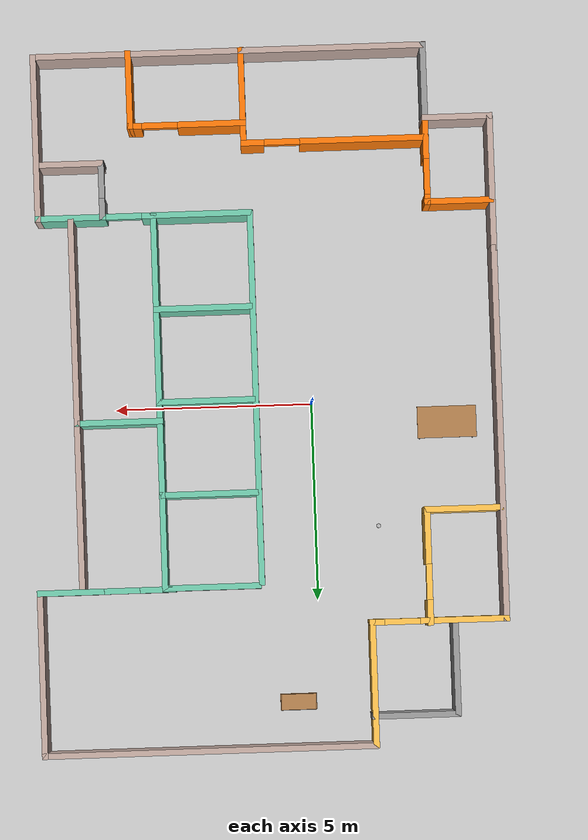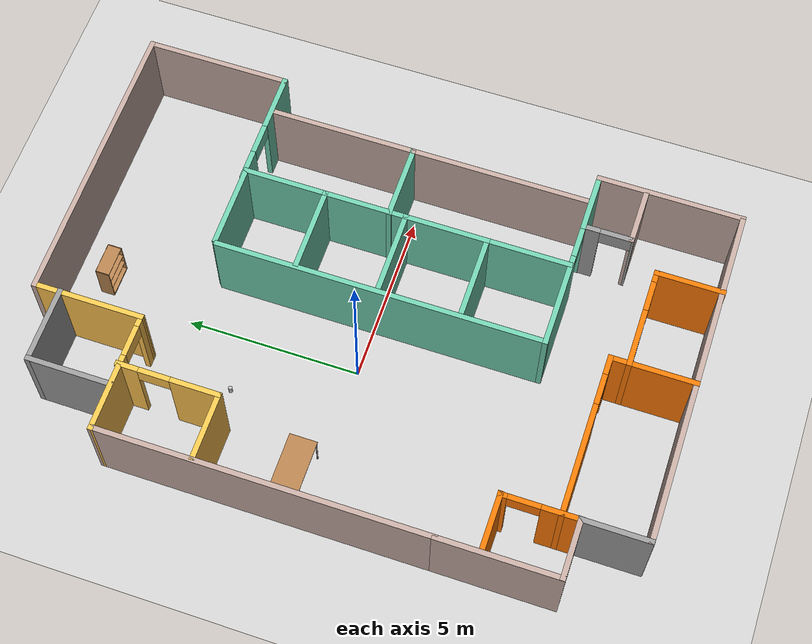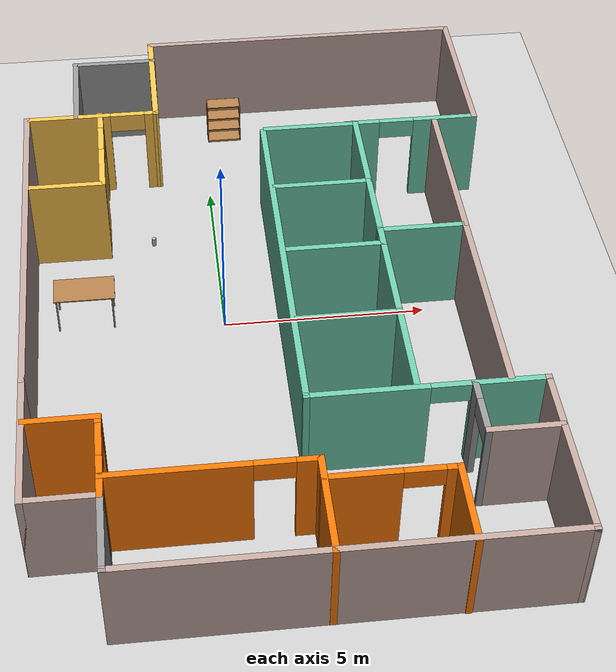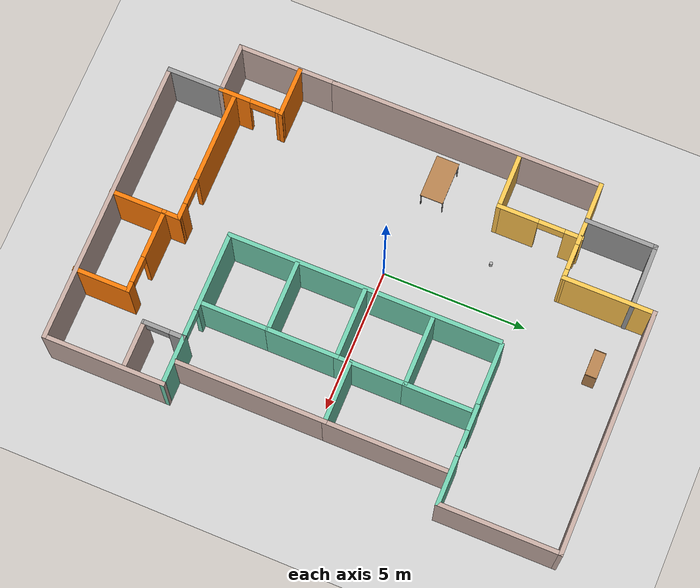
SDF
<sdf version="1.7">
 <world name="default">
  <model name="ground_plane">
   <static>1</static>
   <link name="link">
    <collision name="collision_collision">
     <geometry><plane><normal>0 0 1</normal><size>100 100</size></plane></geometry>
     <surface>
      <contact><collide_bitmask>65535</collide_bitmask></contact>
      <friction><ode><mu>100</mu><mu2>50</mu2></ode></friction>
     </surface>
    </collision>
    <visual name="visual_visual">
     <cast_shadows>0</cast_shadows>
     <geometry><plane><normal>0 0 1</normal><size>100 100</size></plane></geometry>
     <material>
      <script><uri>file://media/materials/scripts/gazebo.material</uri><name>Gazebo/Grey</name></script>
     </material>
    </visual>
   </link>
  </model>
  <model name="mybuilding">
   <pose>1.1462 -0.1123 0 0 -0 0</pose>
   <link name="Wall_123">
    <collision name="collision_Wall_123_Collision">
     <geometry><box><size>5.25 0.15 2.5</size></box></geometry>
     <pose>0 0 1.25 0 -0 0</pose>
    </collision>
    <visual name="visual_Wall_123_Visual">
     <pose>0 0 1.25 0 -0 0</pose>
     <geometry><box><size>5.25 0.15 2.5</size></box></geometry>
     <material>
      <script><uri>file://media/materials/scripts/gazebo.material</uri><name>Gazebo/Grey</name></script>
      <ambient>0.760784 0.662745 0.627451 1</ambient>
     </material>
     <meta><layer>0</layer></meta>
    </visual>
    <pose>4.79444 -2.06703 0 0 -0 1.5708</pose>
   </link>
   <link name="Wall_125">
    <collision name="collision_Wall_125_Collision">
     <geometry><box><size>2.25 0.15 2.5</size></box></geometry>
     <pose>0 0 1.25 0 -0 0</pose>
    </collision>
    <visual name="visual_Wall_125_Visual">
     <pose>0 0 1.25 0 -0 0</pose>
     <geometry><box><size>2.25 0.15 2.5</size></box></geometry>
     <material>
      <script><uri>file://media/materials/scripts/gazebo.material</uri><name>Gazebo/Grey</name></script>
      <ambient>0.435294 0.796078 0.67451 1</ambient>
     </material>
     <meta><layer>0</layer></meta>
    </visual>
    <pose>3.74444 0.482967 0 0 -0 3.14159</pose>
   </link>
   <link name="Wall_127">
    <collision name="collision_Wall_127_Collision">
     <geometry><box><size>4.25 0.15 2.5</size></box></geometry>
     <pose>0 0 1.25 0 -0 0</pose>
    </collision>
    <visual name="visual_Wall_127_Visual">
     <pose>0 0 1.25 0 -0 0</pose>
     <geometry><box><size>4.25 0.15 2.5</size></box></geometry>
     <material>
      <script><uri>file://media/materials/scripts/gazebo.material</uri><name>Gazebo/Grey</name></script>
      <ambient>0.760784 0.662745 0.627451 1</ambient>
     </material>
     <meta><layer>0</layer></meta>
    </visual>
    <pose>4.79444 2.53297 0 0 -0 1.5708</pose>
   </link>
   <link name="Wall_129">
    <collision name="collision_Wall_129_Collision">
     <geometry><box><size>4.25 0.15 2.5</size></box></geometry>
     <pose>0 0 1.25 0 -0 0</pose>
    </collision>
    <visual name="visual_Wall_129_Visual">
     <pose>0 0 1.25 0 -0 0</pose>
     <geometry><box><size>4.25 0.15 2.5</size></box></geometry>
     <material>
      <script><uri>file://media/materials/scripts/gazebo.material</uri><name>Gazebo/Grey</name></script>
      <ambient>0.760784 0.662745 0.627451 1</ambient>
     </material>
     <meta><layer>0</layer></meta>
    </visual>
    <pose>5.86525 6.78658 0 0 -0 1.5708</pose>
   </link>
   <link name="Wall_130">
    <collision name="collision_Wall_130_Collision">
     <geometry><box><size>8.5 0.15 2.5</size></box></geometry>
     <pose>0 0 1.25 0 -0 0</pose>
    </collision>
    <visual name="visual_Wall_130_Visual">
     <pose>0 0 1.25 0 -0 0</pose>
     <geometry><box><size>8.5 0.15 2.5</size></box></geometry>
     <material>
      <script><uri>file://media/materials/scripts/gazebo.material</uri><name>Gazebo/Grey</name></script>
      <ambient>0.760784 0.662745 0.627451 1</ambient>
     </material>
     <meta><layer>0</layer></meta>
    </visual>
    <pose>1.69025 8.83658 0 0 -0 3.14159</pose>
   </link>
   <link name="Wall_131">
    <collision name="collision_Wall_131_Collision">
     <geometry><box><size>3.25 0.15 2.5</size></box></geometry>
     <pose>0 0 1.25 0 -0 0</pose>
    </collision>
    <visual name="visual_Wall_131_Visual">
     <pose>0 0 1.25 0 -0 0</pose>
     <geometry><box><size>3.25 0.15 2.5</size></box></geometry>
     <material>
      <script><uri>file://media/materials/scripts/gazebo.material</uri><name>Gazebo/Grey</name></script>
      <ambient>1 0.764706 0.305882 1</ambient>
     </material>
     <meta><layer>0</layer></meta>
    </visual>
    <pose>-2.48475 7.28658 0 0 -0 -1.5708</pose>
   </link>
   <link name="Wall_136">
    <collision name="collision_Wall_136_Collision">
     <geometry><box><size>9.49958 0.15 2.5</size></box></geometry>
     <pose>0 0 1.25 0 -0 0</pose>
    </collision>
    <visual name="visual_Wall_136_Visual">
     <pose>0 0 1.25 0 -0 0</pose>
     <geometry><box><size>9.49958 0.15 2.5</size></box></geometry>
     <material>
      <script><uri>file://media/materials/scripts/gazebo.material</uri><name>Gazebo/Grey</name></script>
      <ambient>0.760784 0.662745 0.627451 1</ambient>
     </material>
     <meta><layer>0</layer></meta>
    </visual>
    <pose>-5.86518 1.06458 0 0 -0 1.5708</pose>
   </link>
   <link name="Wall_138">
    <pose>-4.17497 5.73808 0 0 -0 3.14071</pose>
    <visual name="visual_Wall_138_Visual_0">
     <pose>-1.57735 0 1.25 0 -0 0</pose>
     <geometry><box><size>0.375734 0.15 2.5</size></box></geometry>
     <material>
      <script><uri>file://media/materials/scripts/gazebo.material</uri><name>Gazebo/Grey</name></script>
      <ambient>1 0.764706 0.305882 1</ambient>
     </material>
     <meta><layer>0</layer></meta>
    </visual>
    <collision name="collision_Wall_138_Collision_0">
     <geometry><box><size>0.375734 0.15 2.5</size></box></geometry>
     <pose>-1.57735 0 1.25 0 -0 0</pose>
    </collision>
    <visual name="visual_Wall_138_Visual_1">
     <pose>0.637867 0 1.25 0 -0 0</pose>
     <geometry><box><size>2.2547 0.15 2.5</size></box></geometry>
     <material>
      <script><uri>file://media/materials/scripts/gazebo.material</uri><name>Gazebo/Grey</name></script>
      <ambient>1 0.764706 0.305882 1</ambient>
     </material>
     <meta><layer>0</layer></meta>
    </visual>
    <collision name="collision_Wall_138_Collision_1">
     <geometry><box><size>2.2547 0.15 2.5</size></box></geometry>
     <pose>0.637867 0 1.25 0 -0 0</pose>
    </collision>
    <visual name="visual_Wall_138_Visual_2">
     <pose>-0.939484 0 2.25 0 -0 0</pose>
     <geometry><box><size>0.9 0.15 0.5</size></box></geometry>
     <material>
      <script><uri>file://media/materials/scripts/gazebo.material</uri><name>Gazebo/Grey</name></script>
      <ambient>1 0.764706 0.305882 1</ambient>
     </material>
     <meta><layer>0</layer></meta>
    </visual>
    <collision name="collision_Wall_138_Collision_2">
     <geometry><box><size>0.9 0.15 0.5</size></box></geometry>
     <pose>-0.939484 0 2.25 0 -0 0</pose>
    </collision>
   </link>
   <link name="Wall_141">
    <collision name="collision_Wall_141_Collision">
     <geometry><box><size>2.25 0.15 2.5</size></box></geometry>
     <pose>0 0 1.25 0 -0 0</pose>
    </collision>
    <visual name="visual_Wall_141_Visual">
     <pose>0 0 1.25 0 -0 0</pose>
     <geometry><box><size>2.25 0.15 2.5</size></box></geometry>
     <material>
      <script><uri>file://media/materials/scripts/gazebo.material</uri><name>Gazebo/Grey</name></script>
      <ambient>1 1 1 1</ambient>
     </material>
     <meta><layer>0</layer></meta>
    </visual>
    <pose>-3.51661 8.10127 0 0 -0 3.14159</pose>
   </link>
   <link name="Wall_142">
    <collision name="collision_Wall_142_Collision">
     <geometry><box><size>2.5 0.15 2.5</size></box></geometry>
     <pose>0 0 1.25 0 -0 0</pose>
    </collision>
    <visual name="visual_Wall_142_Visual">
     <pose>0 0 1.25 0 -0 0</pose>
     <geometry><box><size>2.5 0.15 2.5</size></box></geometry>
     <material>
      <script><uri>file://media/materials/scripts/gazebo.material</uri><name>Gazebo/Grey</name></script>
      <ambient>1 1 1 1</ambient>
     </material>
     <meta><layer>0</layer></meta>
    </visual>
    <pose>-4.56661 6.92627 0 0 -0 -1.5708</pose>
   </link>
   <link name="Wall_144">
    <pose>-3.95132 4.36352 0 0 -0 -1.5708</pose>
    <visual name="visual_Wall_144_Visual_0">
     <pose>-1.17446 0 1.25 0 -0 0</pose>
     <geometry><box><size>0.651089 0.15 2.5</size></box></geometry>
     <material>
      <script><uri>file://media/materials/scripts/gazebo.material</uri><name>Gazebo/Grey</name></script>
      <ambient>1 0.764706 0.305882 1</ambient>
     </material>
     <meta><layer>0</layer></meta>
    </visual>
    <collision name="collision_Wall_144_Collision_0">
     <geometry><box><size>0.651089 0.15 2.5</size></box></geometry>
     <pose>-1.17446 0 1.25 0 -0 0</pose>
    </collision>
    <visual name="visual_Wall_144_Visual_1">
     <pose>0.775545 0 1.25 0 -0 0</pose>
     <geometry><box><size>1.44891 0.15 2.5</size></box></geometry>
     <material>
      <script><uri>file://media/materials/scripts/gazebo.material</uri><name>Gazebo/Grey</name></script>
      <ambient>1 0.764706 0.305882 1</ambient>
     </material>
     <meta><layer>0</layer></meta>
    </visual>
    <collision name="collision_Wall_144_Collision_1">
     <geometry><box><size>1.44891 0.15 2.5</size></box></geometry>
     <pose>0.775545 0 1.25 0 -0 0</pose>
    </collision>
    <visual name="visual_Wall_144_Visual_2">
     <pose>-0.398911 0 2.25 0 -0 0</pose>
     <geometry><box><size>0.9 0.15 0.5</size></box></geometry>
     <material>
      <script><uri>file://media/materials/scripts/gazebo.material</uri><name>Gazebo/Grey</name></script>
      <ambient>1 0.764706 0.305882 1</ambient>
     </material>
     <meta><layer>0</layer></meta>
    </visual>
    <collision name="collision_Wall_144_Collision_2">
     <geometry><box><size>0.9 0.15 0.5</size></box></geometry>
     <pose>-0.398911 0 2.25 0 -0 0</pose>
    </collision>
   </link>
   <link name="Wall_145">
    <collision name="collision_Wall_145_Collision">
     <geometry><box><size>2 0.15 2.5</size></box></geometry>
     <pose>0 0 1.25 0 -0 0</pose>
    </collision>
    <visual name="visual_Wall_145_Visual">
     <pose>0 0 1.25 0 -0 0</pose>
     <geometry><box><size>2 0.15 2.5</size></box></geometry>
     <material>
      <script><uri>file://media/materials/scripts/gazebo.material</uri><name>Gazebo/Grey</name></script>
      <ambient>1 0.764706 0.305882 1</ambient>
     </material>
     <meta><layer>0</layer></meta>
    </visual>
    <pose>-4.87632 2.93852 0 0 -0 3.14159</pose>
   </link>
   <link name="Wall_27">
    <collision name="collision_Wall_27_Collision">
     <geometry><box><size>1.9915 0.15 2.5</size></box></geometry>
     <pose>0 0 1.25 0 -0 0</pose>
    </collision>
    <visual name="visual_Wall_27_Visual">
     <pose>0 0 1.25 0 -0 0</pose>
     <geometry><box><size>1.9915 0.15 2.5</size></box></geometry>
     <material>
      <script><uri>file://media/materials/scripts/gazebo.material</uri><name>Gazebo/Grey</name></script>
      <ambient>1 1 1 1</ambient>
     </material>
     <meta><layer>0</layer></meta>
    </visual>
    <pose>-4.23475 -7.88117 0 0 -0 -1.5708</pose>
   </link>
   <link name="Wall_36">
    <pose>-4.23475 -5.89742 0 0 -0 1.5708</pose>
    <visual name="visual_Wall_36_Visual_0">
     <pose>-0.580632 0 1.25 0 -0 0</pose>
     <geometry><box><size>1.11474 0.15 2.5</size></box></geometry>
     <material>
      <script><uri>file://media/materials/scripts/gazebo.material</uri><name>Gazebo/Grey</name></script>
      <ambient>0.996078 0.47451 0.0196078 1</ambient>
     </material>
     <meta><layer>0</layer></meta>
    </visual>
    <collision name="collision_Wall_36_Collision_0">
     <geometry><box><size>1.11474 0.15 2.5</size></box></geometry>
     <pose>-0.580632 0 1.25 0 -0 0</pose>
    </collision>
    <visual name="visual_Wall_36_Visual_1">
     <pose>1.00737 0 1.25 0 -0 0</pose>
     <geometry><box><size>0.261265 0.15 2.5</size></box></geometry>
     <material>
      <script><uri>file://media/materials/scripts/gazebo.material</uri><name>Gazebo/Grey</name></script>
      <ambient>0.996078 0.47451 0.0196078 1</ambient>
     </material>
     <meta><layer>0</layer></meta>
    </visual>
    <collision name="collision_Wall_36_Collision_1">
     <geometry><box><size>0.261265 0.15 2.5</size></box></geometry>
     <pose>1.00737 0 1.25 0 -0 0</pose>
    </collision>
    <visual name="visual_Wall_36_Visual_2">
     <pose>0.426735 0 2.25 0 -0 0</pose>
     <geometry><box><size>0.9 0.15 0.5</size></box></geometry>
     <material>
      <script><uri>file://media/materials/scripts/gazebo.material</uri><name>Gazebo/Grey</name></script>
      <ambient>0.996078 0.47451 0.0196078 1</ambient>
     </material>
     <meta><layer>0</layer></meta>
    </visual>
    <collision name="collision_Wall_36_Collision_2">
     <geometry><box><size>0.9 0.15 0.5</size></box></geometry>
     <pose>0.426735 0 2.25 0 -0 0</pose>
    </collision>
   </link>
   <link name="Wall_41">
    <collision name="collision_Wall_41_Collision">
     <geometry><box><size>1.75 0.15 2.5</size></box></geometry>
     <pose>0 0 1.25 0 -0 0</pose>
    </collision>
    <visual name="visual_Wall_41_Visual">
     <pose>0 0 1.25 0 -0 0</pose>
     <geometry><box><size>1.75 0.15 2.5</size></box></geometry>
     <material>
      <script><uri>file://media/materials/scripts/gazebo.material</uri><name>Gazebo/Grey</name></script>
      <ambient>0.996078 0.47451 0.0196078 1</ambient>
     </material>
     <meta><layer>0</layer></meta>
    </visual>
    <pose>-5.02325 -4.83442 0 0 -0 3.14159</pose>
   </link>
   <link name="Wall_43">
    <collision name="collision_Wall_43_Collision">
     <geometry><box><size>10 0.15 2.5</size></box></geometry>
     <pose>0 0 1.25 0 -0 0</pose>
    </collision>
    <visual name="visual_Wall_43_Visual">
     <pose>0 0 1.25 0 -0 0</pose>
     <geometry><box><size>10 0.15 2.5</size></box></geometry>
     <material>
      <script><uri>file://media/materials/scripts/gazebo.material</uri><name>Gazebo/Grey</name></script>
      <ambient>0.760784 0.662745 0.627451 1</ambient>
     </material>
     <meta><layer>0</layer></meta>
    </visual>
    <pose>0.690251 -8.81342 0 0 -0 0</pose>
   </link>
   <link name="Wall_47">
    <pose>-1.93659 -6.46908 0 0 -0 0</pose>
    <visual name="visual_Wall_47_Visual_0">
     <pose>-0.7455 0 1.25 0 -0 0</pose>
     <geometry><box><size>3.259 0.15 2.5</size></box></geometry>
     <material>
      <script><uri>file://media/materials/scripts/gazebo.material</uri><name>Gazebo/Grey</name></script>
      <ambient>0.996078 0.47451 0.0196078 1</ambient>
     </material>
     <meta><layer>0</layer></meta>
    </visual>
    <collision name="collision_Wall_47_Collision_0">
     <geometry><box><size>3.259 0.15 2.5</size></box></geometry>
     <pose>-0.7455 0 1.25 0 -0 0</pose>
    </collision>
    <visual name="visual_Wall_47_Visual_1">
     <pose>2.0795 0 1.25 0 -0 0</pose>
     <geometry><box><size>0.591 0.15 2.5</size></box></geometry>
     <material>
      <script><uri>file://media/materials/scripts/gazebo.material</uri><name>Gazebo/Grey</name></script>
      <ambient>0.996078 0.47451 0.0196078 1</ambient>
     </material>
     <meta><layer>0</layer></meta>
    </visual>
    <collision name="collision_Wall_47_Collision_1">
     <geometry><box><size>0.591 0.15 2.5</size></box></geometry>
     <pose>2.0795 0 1.25 0 -0 0</pose>
    </collision>
    <visual name="visual_Wall_47_Visual_2">
     <pose>1.334 0 2.25 0 -0 0</pose>
     <geometry><box><size>0.9 0.15 0.5</size></box></geometry>
     <material>
      <script><uri>file://media/materials/scripts/gazebo.material</uri><name>Gazebo/Grey</name></script>
      <ambient>0.996078 0.47451 0.0196078 1</ambient>
     </material>
     <meta><layer>0</layer></meta>
    </visual>
    <collision name="collision_Wall_47_Collision_2">
     <geometry><box><size>0.9 0.15 0.5</size></box></geometry>
     <pose>1.334 0 2.25 0 -0 0</pose>
    </collision>
   </link>
   <link name="Wall_48">
    <collision name="collision_Wall_48_Collision">
     <geometry><box><size>2.5 0.15 2.5</size></box></geometry>
     <pose>0 0 1.25 0 -0 0</pose>
    </collision>
    <visual name="visual_Wall_48_Visual">
     <pose>0 0 1.25 0 -0 0</pose>
     <geometry><box><size>2.5 0.15 2.5</size></box></geometry>
     <material>
      <script><uri>file://media/materials/scripts/gazebo.material</uri><name>Gazebo/Grey</name></script>
      <ambient>0.996078 0.47451 0.0196078 1</ambient>
     </material>
     <meta><layer>0</layer></meta>
    </visual>
    <pose>0.36341 -7.64408 0 0 -0 -1.5708</pose>
   </link>
   <link name="Wall_52">
    <pose>1.78841 -6.98658 0 0 -0 0</pose>
    <visual name="visual_Wall_52_Visual_0">
     <pose>-0.63525 0 1.25 0 -0 0</pose>
     <geometry><box><size>1.7295 0.15 2.5</size></box></geometry>
     <material>
      <script><uri>file://media/materials/scripts/gazebo.material</uri><name>Gazebo/Grey</name></script>
      <ambient>0.996078 0.47451 0.0196078 1</ambient>
     </material>
     <meta><layer>0</layer></meta>
    </visual>
    <collision name="collision_Wall_52_Collision_0">
     <geometry><box><size>1.7295 0.15 2.5</size></box></geometry>
     <pose>-0.63525 0 1.25 0 -0 0</pose>
    </collision>
    <visual name="visual_Wall_52_Visual_1">
     <pose>1.31475 0 1.25 0 -0 0</pose>
     <geometry><box><size>0.3705 0.15 2.5</size></box></geometry>
     <material>
      <script><uri>file://media/materials/scripts/gazebo.material</uri><name>Gazebo/Grey</name></script>
      <ambient>0.996078 0.47451 0.0196078 1</ambient>
     </material>
     <meta><layer>0</layer></meta>
    </visual>
    <collision name="collision_Wall_52_Collision_1">
     <geometry><box><size>0.3705 0.15 2.5</size></box></geometry>
     <pose>1.31475 0 1.25 0 -0 0</pose>
    </collision>
    <visual name="visual_Wall_52_Visual_2">
     <pose>0.6795 0 2.25 0 -0 0</pose>
     <geometry><box><size>0.9 0.15 0.5</size></box></geometry>
     <material>
      <script><uri>file://media/materials/scripts/gazebo.material</uri><name>Gazebo/Grey</name></script>
      <ambient>0.996078 0.47451 0.0196078 1</ambient>
     </material>
     <meta><layer>0</layer></meta>
    </visual>
    <collision name="collision_Wall_52_Collision_2">
     <geometry><box><size>0.9 0.15 0.5</size></box></geometry>
     <pose>0.6795 0 2.25 0 -0 0</pose>
    </collision>
   </link>
   <link name="Wall_53">
    <collision name="collision_Wall_53_Collision">
     <geometry><box><size>2 0.15 2.5</size></box></geometry>
     <pose>0 0 1.25 0 -0 0</pose>
    </collision>
    <visual name="visual_Wall_53_Visual">
     <pose>0 0 1.25 0 -0 0</pose>
     <geometry><box><size>2 0.15 2.5</size></box></geometry>
     <material>
      <script><uri>file://media/materials/scripts/gazebo.material</uri><name>Gazebo/Grey</name></script>
      <ambient>0.996078 0.47451 0.0196078 1</ambient>
     </material>
     <meta><layer>0</layer></meta>
    </visual>
    <pose>3.21341 -7.91158 0 0 -0 -1.5708</pose>
   </link>
   <link name="Wall_55">
    <collision name="collision_Wall_55_Collision">
     <geometry><box><size>4.25 0.15 2.5</size></box></geometry>
     <pose>0 0 1.25 0 -0 0</pose>
    </collision>
    <visual name="visual_Wall_55_Visual">
     <pose>0 0 1.25 0 -0 0</pose>
     <geometry><box><size>4.25 0.15 2.5</size></box></geometry>
     <material>
      <script><uri>file://media/materials/scripts/gazebo.material</uri><name>Gazebo/Grey</name></script>
      <ambient>0.760784 0.662745 0.627451 1</ambient>
     </material>
     <meta><layer>0</layer></meta>
    </visual>
    <pose>5.61525 -6.76342 0 0 -0 1.5708</pose>
   </link>
   <link name="Wall_56">
    <pose>2.94025 -4.71342 0 0 -0 3.14159</pose>
    <visual name="visual_Wall_56_Visual_0">
     <pose>-1.85364 0 1.25 0 -0 0</pose>
     <geometry><box><size>1.79272 0.15 2.5</size></box></geometry>
     <material>
      <script><uri>file://media/materials/scripts/gazebo.material</uri><name>Gazebo/Grey</name></script>
      <ambient>0.435294 0.796078 0.67451 1</ambient>
     </material>
     <meta><layer>0</layer></meta>
    </visual>
    <collision name="collision_Wall_56_Collision_0">
     <geometry><box><size>1.79272 0.15 2.5</size></box></geometry>
     <pose>-1.85364 0 1.25 0 -0 0</pose>
    </collision>
    <visual name="visual_Wall_56_Visual_1">
     <pose>1.34636 0 1.25 0 -0 0</pose>
     <geometry><box><size>2.80728 0.15 2.5</size></box></geometry>
     <material>
      <script><uri>file://media/materials/scripts/gazebo.material</uri><name>Gazebo/Grey</name></script>
      <ambient>0.435294 0.796078 0.67451 1</ambient>
     </material>
     <meta><layer>0</layer></meta>
    </visual>
    <collision name="collision_Wall_56_Collision_1">
     <geometry><box><size>2.80728 0.15 2.5</size></box></geometry>
     <pose>1.34636 0 1.25 0 -0 0</pose>
    </collision>
    <visual name="visual_Wall_56_Visual_2">
     <pose>-0.507283 0 2.25 0 -0 0</pose>
     <geometry><box><size>0.9 0.15 0.5</size></box></geometry>
     <material>
      <script><uri>file://media/materials/scripts/gazebo.material</uri><name>Gazebo/Grey</name></script>
      <ambient>0.435294 0.796078 0.67451 1</ambient>
     </material>
     <meta><layer>0</layer></meta>
    </visual>
    <collision name="collision_Wall_56_Collision_2">
     <geometry><box><size>0.9 0.15 0.5</size></box></geometry>
     <pose>-0.507283 0 2.25 0 -0 0</pose>
    </collision>
   </link>
   <link name="Wall_58">
    <collision name="collision_Wall_58_Collision">
     <geometry><box><size>1.75 0.15 2.5</size></box></geometry>
     <pose>0 0 1.25 0 -0 0</pose>
    </collision>
    <visual name="visual_Wall_58_Visual">
     <pose>0 0 1.25 0 -0 0</pose>
     <geometry><box><size>1.75 0.15 2.5</size></box></geometry>
     <material>
      <script><uri>file://media/materials/scripts/gazebo.material</uri><name>Gazebo/Grey</name></script>
      <ambient>0.760784 0.662745 0.627451 1</ambient>
     </material>
     <meta><layer>0</layer></meta>
    </visual>
    <pose>4.79591 -6.07808 0 0 -0 3.14159</pose>
   </link>
   <link name="Wall_59">
    <pose>3.98441 -5.40308 0 0 -0 1.5708</pose>
    <visual name="visual_Wall_59_Visual_0">
     <pose>-0.719 0 1.25 0 -0 0</pose>
     <geometry><box><size>0.062 0.15 2.5</size></box></geometry>
     <material>
      <script><uri>file://media/materials/scripts/gazebo.material</uri><name>Gazebo/Grey</name></script>
      <ambient>1 1 1 1</ambient>
     </material>
     <meta><layer>0</layer></meta>
    </visual>
    <collision name="collision_Wall_59_Collision_0">
     <geometry><box><size>0.062 0.15 2.5</size></box></geometry>
     <pose>-0.719 0 1.25 0 -0 0</pose>
    </collision>
    <visual name="visual_Wall_59_Visual_1">
     <pose>0.481 0 1.25 0 -0 0</pose>
     <geometry><box><size>0.538 0.15 2.5</size></box></geometry>
     <material>
      <script><uri>file://media/materials/scripts/gazebo.material</uri><name>Gazebo/Grey</name></script>
      <ambient>1 1 1 1</ambient>
     </material>
     <meta><layer>0</layer></meta>
    </visual>
    <collision name="collision_Wall_59_Collision_1">
     <geometry><box><size>0.538 0.15 2.5</size></box></geometry>
     <pose>0.481 0 1.25 0 -0 0</pose>
    </collision>
    <visual name="visual_Wall_59_Visual_2">
     <pose>-0.238 0 2.25 0 -0 0</pose>
     <geometry><box><size>0.9 0.15 0.5</size></box></geometry>
     <material>
      <script><uri>file://media/materials/scripts/gazebo.material</uri><name>Gazebo/Grey</name></script>
      <ambient>1 1 1 1</ambient>
     </material>
     <meta><layer>0</layer></meta>
    </visual>
    <collision name="collision_Wall_59_Collision_2">
     <geometry><box><size>0.9 0.15 0.5</size></box></geometry>
     <pose>-0.238 0 2.25 0 -0 0</pose>
    </collision>
   </link>
   <link name="Wall_6">
    <collision name="collision_Wall_6_Collision">
     <geometry><box><size>3.5 0.15 2.5</size></box></geometry>
     <pose>0 0 1.25 0 -0 0</pose>
    </collision>
    <visual name="visual_Wall_6_Visual">
     <pose>0 0 1.25 0 -0 0</pose>
     <geometry><box><size>3.5 0.15 2.5</size></box></geometry>
     <material>
      <script><uri>file://media/materials/scripts/gazebo.material</uri><name>Gazebo/Grey</name></script>
      <ambient>0.760784 0.662745 0.627451 1</ambient>
     </material>
     <meta><layer>0</layer></meta>
    </visual>
    <pose>-5.86518 -5.28542 0 0 -0 -1.5708</pose>
   </link>
   <link name="Wall_73">
    <collision name="collision_Wall_73_Collision">
     <geometry><box><size>2.5 0.15 2.5</size></box></geometry>
     <pose>0 0 1.25 0 -0 0</pose>
    </collision>
    <visual name="visual_Wall_73_Visual">
     <pose>0 0 1.25 0 -0 0</pose>
     <geometry><box><size>2.5 0.15 2.5</size></box></geometry>
     <material>
      <script><uri>file://media/materials/scripts/gazebo.material</uri><name>Gazebo/Grey</name></script>
      <ambient>0.435294 0.796078 0.67451 1</ambient>
     </material>
     <meta><layer>0</layer></meta>
    </visual>
    <pose>2.70558 -3.51332 0 0 -0 1.5708</pose>
   </link>
   <link name="Wall_74">
    <collision name="collision_Wall_74_Collision">
     <geometry><box><size>2.5 0.15 2.5</size></box></geometry>
     <pose>0 0 1.25 0 -0 0</pose>
    </collision>
    <visual name="visual_Wall_74_Visual">
     <pose>0 0 1.25 0 -0 0</pose>
     <geometry><box><size>2.5 0.15 2.5</size></box></geometry>
     <material>
      <script><uri>file://media/materials/scripts/gazebo.material</uri><name>Gazebo/Grey</name></script>
      <ambient>0.435294 0.796078 0.67451 1</ambient>
     </material>
     <meta><layer>0</layer></meta>
    </visual>
    <pose>1.53058 -2.33832 0 0 -0 3.14159</pose>
   </link>
   <link name="Wall_76">
    <collision name="collision_Wall_76_Collision">
     <geometry><box><size>2.5 0.15 2.5</size></box></geometry>
     <pose>0 0 1.25 0 -0 0</pose>
    </collision>
    <visual name="visual_Wall_76_Visual">
     <pose>0 0 1.25 0 -0 0</pose>
     <geometry><box><size>2.5 0.15 2.5</size></box></geometry>
     <material>
      <script><uri>file://media/materials/scripts/gazebo.material</uri><name>Gazebo/Grey</name></script>
      <ambient>0.435294 0.796078 0.67451 1</ambient>
     </material>
     <meta><layer>0</layer></meta>
    </visual>
    <pose>2.70558 -1.16332 0 0 -0 1.5708</pose>
   </link>
   <link name="Wall_77">
    <collision name="collision_Wall_77_Collision">
     <geometry><box><size>2.5 0.15 2.5</size></box></geometry>
     <pose>0 0 1.25 0 -0 0</pose>
    </collision>
    <visual name="visual_Wall_77_Visual">
     <pose>0 0 1.25 0 -0 0</pose>
     <geometry><box><size>2.5 0.15 2.5</size></box></geometry>
     <material>
      <script><uri>file://media/materials/scripts/gazebo.material</uri><name>Gazebo/Grey</name></script>
      <ambient>0.435294 0.796078 0.67451 1</ambient>
     </material>
     <meta><layer>0</layer></meta>
    </visual>
    <pose>1.53058 0.011678 0 0 -0 3.14159</pose>
   </link>
   <link name="Wall_79">
    <collision name="collision_Wall_79_Collision">
     <geometry><box><size>2.5 0.15 2.5</size></box></geometry>
     <pose>0 0 1.25 0 -0 0</pose>
    </collision>
    <visual name="visual_Wall_79_Visual">
     <pose>0 0 1.25 0 -0 0</pose>
     <geometry><box><size>2.5 0.15 2.5</size></box></geometry>
     <material>
      <script><uri>file://media/materials/scripts/gazebo.material</uri><name>Gazebo/Grey</name></script>
      <ambient>0.435294 0.796078 0.67451 1</ambient>
     </material>
     <meta><layer>0</layer></meta>
    </visual>
    <pose>2.70558 1.18668 0 0 -0 1.5708</pose>
   </link>
   <link name="Wall_8">
    <collision name="collision_Wall_8_Collision">
     <geometry><box><size>1.78043 0.15 2.5</size></box></geometry>
     <pose>0 0 1.25 0 -0 0</pose>
    </collision>
    <visual name="visual_Wall_8_Visual">
     <pose>0 0 1.25 0 -0 0</pose>
     <geometry><box><size>1.78043 0.15 2.5</size></box></geometry>
     <material>
      <script><uri>file://media/materials/scripts/gazebo.material</uri><name>Gazebo/Grey</name></script>
      <ambient>0.760784 0.662745 0.627451 1</ambient>
     </material>
     <meta><layer>0</layer></meta>
    </visual>
    <pose>-5.04127 -6.96042 0 0 -0 0</pose>
   </link>
   <link name="Wall_82">
    <collision name="collision_Wall_82_Collision">
     <geometry><box><size>2.5 0.15 2.5</size></box></geometry>
     <pose>0 0 1.25 0 -0 0</pose>
    </collision>
    <visual name="visual_Wall_82_Visual">
     <pose>0 0 1.25 0 -0 0</pose>
     <geometry><box><size>2.5 0.15 2.5</size></box></geometry>
     <material>
      <script><uri>file://media/materials/scripts/gazebo.material</uri><name>Gazebo/Grey</name></script>
      <ambient>0.435294 0.796078 0.67451 1</ambient>
     </material>
     <meta><layer>0</layer></meta>
    </visual>
    <pose>1.53058 2.36168 0 0 -0 3.14159</pose>
   </link>
   <link name="Wall_85">
    <collision name="collision_Wall_85_Collision">
     <geometry><box><size>2.5 0.15 2.5</size></box></geometry>
     <pose>0 0 1.25 0 -0 0</pose>
    </collision>
    <visual name="visual_Wall_85_Visual">
     <pose>0 0 1.25 0 -0 0</pose>
     <geometry><box><size>2.5 0.15 2.5</size></box></geometry>
     <material>
      <script><uri>file://media/materials/scripts/gazebo.material</uri><name>Gazebo/Grey</name></script>
      <ambient>0.435294 0.796078 0.67451 1</ambient>
     </material>
     <meta><layer>0</layer></meta>
    </visual>
    <pose>2.70558 3.53668 0 0 -0 1.5708</pose>
   </link>
   <link name="Wall_86">
    <collision name="collision_Wall_86_Collision">
     <geometry><box><size>2.5 0.15 2.5</size></box></geometry>
     <pose>0 0 1.25 0 -0 0</pose>
    </collision>
    <visual name="visual_Wall_86_Visual">
     <pose>0 0 1.25 0 -0 0</pose>
     <geometry><box><size>2.5 0.15 2.5</size></box></geometry>
     <material>
      <script><uri>file://media/materials/scripts/gazebo.material</uri><name>Gazebo/Grey</name></script>
      <ambient>0.435294 0.796078 0.67451 1</ambient>
     </material>
     <meta><layer>0</layer></meta>
    </visual>
    <pose>1.53058 4.71168 0 0 -0 3.14159</pose>
   </link>
   <link name="Wall_88">
    <collision name="collision_Wall_88_Collision">
     <geometry><box><size>9.5 0.15 2.5</size></box></geometry>
     <pose>0 0 1.25 0 -0 0</pose>
    </collision>
    <visual name="visual_Wall_88_Visual">
     <pose>0 0 1.25 0 -0 0</pose>
     <geometry><box><size>9.5 0.15 2.5</size></box></geometry>
     <material>
      <script><uri>file://media/materials/scripts/gazebo.material</uri><name>Gazebo/Grey</name></script>
      <ambient>0.435294 0.796078 0.67451 1</ambient>
     </material>
     <meta><layer>0</layer></meta>
    </visual>
    <pose>0.265251 -0.038418 0 0 -0 1.5708</pose>
   </link>
   <link name="Wall_93">
    <pose>4.19025 4.73658 0 0 -0 3.14159</pose>
    <visual name="visual_Wall_93_Visual_0">
     <pose>-0.901489 0 1.25 0 -0 0</pose>
     <geometry><box><size>1.69702 0.15 2.5</size></box></geometry>
     <material>
      <script><uri>file://media/materials/scripts/gazebo.material</uri><name>Gazebo/Grey</name></script>
      <ambient>0.435294 0.796078 0.67451 1</ambient>
     </material>
     <meta><layer>0</layer></meta>
    </visual>
    <collision name="collision_Wall_93_Collision_0">
     <geometry><box><size>1.69702 0.15 2.5</size></box></geometry>
     <pose>-0.901489 0 1.25 0 -0 0</pose>
    </collision>
    <visual name="visual_Wall_93_Visual_1">
     <pose>1.29851 0 1.25 0 -0 0</pose>
     <geometry><box><size>0.902978 0.15 2.5</size></box></geometry>
     <material>
      <script><uri>file://media/materials/scripts/gazebo.material</uri><name>Gazebo/Grey</name></script>
      <ambient>0.435294 0.796078 0.67451 1</ambient>
     </material>
     <meta><layer>0</layer></meta>
    </visual>
    <collision name="collision_Wall_93_Collision_1">
     <geometry><box><size>0.902978 0.15 2.5</size></box></geometry>
     <pose>1.29851 0 1.25 0 -0 0</pose>
    </collision>
    <visual name="visual_Wall_93_Visual_2">
     <pose>0.397022 0 2.25 0 -0 0</pose>
     <geometry><box><size>0.9 0.15 0.5</size></box></geometry>
     <material>
      <script><uri>file://media/materials/scripts/gazebo.material</uri><name>Gazebo/Grey</name></script>
      <ambient>0.435294 0.796078 0.67451 1</ambient>
     </material>
     <meta><layer>0</layer></meta>
    </visual>
    <collision name="collision_Wall_93_Collision_2">
     <geometry><box><size>0.9 0.15 0.5</size></box></geometry>
     <pose>0.397022 0 2.25 0 -0 0</pose>
    </collision>
   </link>
   <static>1</static>
  </model>
  <model name="table">
   <static>1</static>
   <link name="link">
    <collision name="collision_surface">
     <pose>0 0 1 0 -0 0</pose>
     <geometry><box><size>1.5 0.8 0.03</size></box></geometry>
     <surface><friction><ode><mu>0.6</mu><mu2>0.6</mu2></ode></friction></surface>
    </collision>
    <visual name="visual_visual1">
     <pose>0 0 1 0 -0 0</pose>
     <geometry><box><size>1.5 0.8 0.03</size></box></geometry>
     <material>
      <script><uri>file://media/materials/scripts/gazebo.material</uri><name>Gazebo/Wood</name></script>
     </material>
    </visual>
    <collision name="collision_collision_front_left_leg">
     <pose>0.68 0.38 0.5 0 -0 0</pose>
     <geometry><cylinder><radius>0.02</radius><length>1</length></cylinder></geometry>
    </collision>
    <visual name="visual_visual_front_left_leg">
     <pose>0.68 0.38 0.5 0 -0 0</pose>
     <geometry><cylinder><radius>0.02</radius><length>1</length></cylinder></geometry>
     <material>
      <script><uri>file://media/materials/scripts/gazebo.material</uri><name>Gazebo/Grey</name></script>
     </material>
    </visual>
    <collision name="collision_collision_front_right_leg">
     <pose>0.68 -0.38 0.5 0 -0 0</pose>
     <geometry><cylinder><radius>0.02</radius><length>1</length></cylinder></geometry>
    </collision>
    <visual name="visual_visual_front_right_leg">
     <pose>0.68 -0.38 0.5 0 -0 0</pose>
     <geometry><cylinder><radius>0.02</radius><length>1</length></cylinder></geometry>
     <material>
      <script><uri>file://media/materials/scripts/gazebo.material</uri><name>Gazebo/Grey</name></script>
     </material>
    </visual>
    <collision name="collision_back_right_leg">
     <pose>-0.68 -0.38 0.5 0 -0 0</pose>
     <geometry><cylinder><radius>0.02</radius><length>1</length></cylinder></geometry>
    </collision>
    <visual name="visual_back_right_leg">
     <pose>-0.68 -0.38 0.5 0 -0 0</pose>
     <geometry><cylinder><radius>0.02</radius><length>1</length></cylinder></geometry>
     <material>
      <script><uri>file://media/materials/scripts/gazebo.material</uri><name>Gazebo/Grey</name></script>
     </material>
    </visual>
    <collision name="collision_back_left_leg">
     <pose>-0.68 0.38 0.5 0 -0 0</pose>
     <geometry><cylinder><radius>0.02</radius><length>1</length></cylinder></geometry>
    </collision>
    <visual name="visual_back_left_leg">
     <pose>-0.68 0.38 0.5 0 -0 0</pose>
     <geometry><cylinder><radius>0.02</radius><length>1</length></cylinder></geometry>
     <material>
      <script><uri>file://media/materials/scripts/gazebo.material</uri><name>Gazebo/Grey</name></script>
     </material>
    </visual>
   </link>
   <pose>-3.42213 0.583745 0 0 -0 0</pose>
  </model>
  <model name="bookshelf">
   <static>1</static>
   <link name="link">
    <inertial><mass>1</mass></inertial>
    <collision name="collision_back">
     <pose>0 0.005 0.6 0 -0 0</pose>
     <geometry><box><size>0.9 0.01 1.2</size></box></geometry>
    </collision>
    <visual name="visual_visual1">
     <pose>0 0.005 0.6 0 -0 0</pose>
     <geometry><box><size>0.9 0.01 1.2</size></box></geometry>
     <material>
      <script><uri>file://media/materials/scripts/gazebo.material</uri><name>Gazebo/Wood</name></script>
     </material>
    </visual>
    <collision name="collision_left_side">
     <pose>0.45 -0.195 0.6 0 -0 0</pose>
     <geometry><box><size>0.02 0.4 1.2</size></box></geometry>
    </collision>
    <visual name="visual_visual2">
     <pose>0.45 -0.195 0.6 0 -0 0</pose>
     <geometry><box><size>0.02 0.4 1.2</size></box></geometry>
     <material>
      <script><uri>file://media/materials/scripts/gazebo.material</uri><name>Gazebo/Wood</name></script>
     </material>
    </visual>
    <collision name="collision_right_side">
     <pose>-0.45 -0.195 0.6 0 -0 0</pose>
     <geometry><box><size>0.02 0.4 1.2</size></box></geometry>
    </collision>
    <visual name="visual_visual3">
     <pose>-0.45 -0.195 0.6 0 -0 0</pose>
     <geometry><box><size>0.02 0.4 1.2</size></box></geometry>
     <material>
      <script><uri>file://media/materials/scripts/gazebo.material</uri><name>Gazebo/Wood</name></script>
     </material>
    </visual>
    <collision name="collision_bottom">
     <pose>0 -0.195 0.03 0 -0 0</pose>
     <geometry><box><size>0.88 0.4 0.06</size></box></geometry>
    </collision>
    <visual name="visual_visual4">
     <pose>0 -0.195 0.03 0 -0 0</pose>
     <geometry><box><size>0.88 0.4 0.06</size></box></geometry>
     <material>
      <script><uri>file://media/materials/scripts/gazebo.material</uri><name>Gazebo/Wood</name></script>
     </material>
    </visual>
    <collision name="collision_top">
     <pose>0 -0.195 1.19 0 -0 0</pose>
     <geometry><box><size>0.88 0.4 0.02</size></box></geometry>
    </collision>
    <visual name="visual_visual5">
     <pose>0 -0.195 1.19 0 -0 0</pose>
     <geometry><box><size>0.88 0.4 0.02</size></box></geometry>
     <material>
      <script><uri>file://media/materials/scripts/gazebo.material</uri><name>Gazebo/Wood</name></script>
     </material>
    </visual>
    <collision name="collision_low_shelf">
     <pose>0 -0.195 0.43 0 -0 0</pose>
     <geometry><box><size>0.88 0.4 0.02</size></box></geometry>
    </collision>
    <visual name="visual_visual6">
     <pose>0 -0.195 0.43 0 -0 0</pose>
     <geometry><box><size>0.88 0.4 0.02</size></box></geometry>
     <material>
      <script><uri>file://media/materials/scripts/gazebo.material</uri><name>Gazebo/Wood</name></script>
     </material>
    </visual>
    <collision name="collision_high_shelf">
     <pose>0 -0.195 0.8 0 -0 0</pose>
     <geometry><box><size>0.88 0.4 0.02</size></box></geometry>
    </collision>
    <visual name="visual_visual7">
     <pose>0 -0.195 0.8 0 -0 0</pose>
     <geometry><box><size>0.88 0.4 0.02</size></box></geometry>
     <material>
      <script><uri>file://media/materials/scripts/gazebo.material</uri><name>Gazebo/Wood</name></script>
     </material>
    </visual>
   </link>
   <pose>0.579849 7.77703 0 0 -0 0</pose>
  </model>
  <model name="beer">
   <link name="link">
    <pose>0 0 0.115 0 -0 0</pose>
    <inertial>
     <mass>0.39</mass>
     <inertia><ixx>0.00058</ixx><ixy>0</ixy><ixz>0</ixz><iyy>0.00058</iyy><iyz>0</iyz><izz>0.00019</izz></inertia>
    </inertial>
    <collision name="collision_collision">
     <geometry><cylinder><radius>0.055</radius><length>0.23</length></cylinder></geometry>
    </collision>
    <visual name="visual_visual">
     <geometry><cylinder><radius>0.055</radius><length>0.23</length></cylinder></geometry>
     <material>
      <script>
       <uri>model://beer/materials/scripts</uri>
       <uri>model://beer/materials/textures</uri>
       <name>Beer/Diffuse</name>
      </script>
     </material>
    </visual>
   </link>
   <pose>-1.61892 3.16597 -3e-06 1e-06 -0 -3e-06</pose>
  </model>
 </world>
</sdf>
